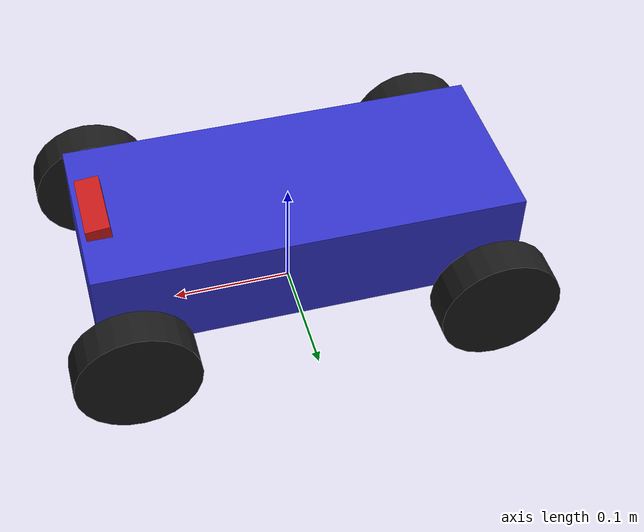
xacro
<?xml version="1.0" encoding="utf-8"?>
<robot name="ackerman_simple">

  <!-- ================= MATERIALS ================= -->
  <material name="blue"><color rgba="0.2 0.2 0.8 1"/></material>
  <material name="black"><color rgba="0.1 0.1 0.1 1"/></material>
  <material name="red"><color rgba="0.8 0.1 0.1 1"/></material>

  <!-- ================= BASE ================= -->
  <link name="base_footprint"/>

  <link name="base_link">
    <inertial>
      <origin xyz="0.0115 0 0.0687" rpy="0 0 0"/>
      <mass value="1.8886"/>
      <inertia ixx="0.00576" ixy="0.0" ixz="0.000003" iyy="0.01878" iyz="0.0" izz="0.02437"/>
    </inertial>
    <visual>
      <origin xyz="0.01 0 0.05" rpy="0 0 0"/>
      <geometry><box size="0.35 0.15 0.08"/></geometry>
      <material name="blue"/>
    </visual>
    <collision>
      <origin xyz="0.01 0 0.05" rpy="0 0 0"/>
      <geometry><box size="0.35 0.15 0.08"/></geometry>
    </collision>
  </link>

  <joint name="base_joint" type="fixed">
    <origin xyz="-0.0117 0 0.02677" rpy="0 0 0"/>
    <parent link="base_footprint"/>
    <child link="base_link"/>
  </joint>

  <!-- ================= FRONT LEFT STEERING & WHEEL ================= -->
  <link name="FL_STEERING_LINK">
    <inertial>
      <origin xyz="-0.0029 0 0" rpy="0 0 0"/>
      <mass value="0.0038"/>
      <inertia ixx="0.0000003" ixy="0" ixz="0" iyy="0.0000006" iyz="0" izz="0.0000003"/>
    </inertial>
  </link>

  <joint name="FL_STEERING_JOINT" type="revolute">
    <origin xyz="0.16174 0.085 0.0235" rpy="0 0 0"/>
    <parent link="base_link"/>
    <child link="FL_STEERING_LINK"/>
    <axis xyz="0 0 1"/>
    <limit lower="-0.524" upper="0.524" effort="5" velocity="3"/>
  </joint>

  <link name="FL_WHEEL_LINK">
    <inertial>
      <origin xyz="0 0 0" rpy="0 0 0"/>
      <mass value="0.0635"/>
      <inertia ixx="0.000046" ixy="0" ixz="0" iyy="0.000089" iyz="0" izz="0.000046"/>
    </inertial>
    <visual>
      <origin xyz="0 0 0" rpy="1.57079632679 0 0"/>
      <geometry><cylinder radius="0.05027" length="0.03"/></geometry>
      <material name="black"/>
    </visual>
    <collision>
      <origin xyz="0 0 0" rpy="1.57079632679 0 0"/>
      <geometry><cylinder radius="0.05027" length="0.03"/></geometry>
    </collision>
  </link>

  <joint name="FL_WHEEL_JOINT" type="continuous">
    <origin xyz="0 0.0245 0" rpy="0 0 0"/>
    <parent link="FL_STEERING_LINK"/>
    <child link="FL_WHEEL_LINK"/>
    <axis xyz="0 1 0"/>
  </joint>

  <!-- ================= FRONT RIGHT STEERING & WHEEL ================= -->
  <link name="FR_STEERING_LINK">
    <inertial>
      <origin xyz="0.0015 0 0" rpy="0 0 0"/>
      <mass value="0.0047"/>
      <inertia ixx="0.0000003" ixy="0" ixz="0" iyy="0.000001" iyz="0" izz="0.0000007"/>
    </inertial>
  </link>

  <joint name="FR_STEERING_JOINT" type="revolute">
    <origin xyz="0.16174 -0.085 0.0235" rpy="0 0 0"/>
    <parent link="base_link"/>
    <child link="FR_STEERING_LINK"/>
    <axis xyz="0 0 1"/>
    <limit lower="-0.524" upper="0.524" effort="5" velocity="3"/>
    <mimic joint="FL_STEERING_JOINT" multiplier="1.0" offset="0.0"/>
  </joint>

  <link name="FR_WHEEL_LINK">
    <inertial>
      <origin xyz="0 0 0" rpy="0 0 0"/>
      <mass value="0.0635"/>
      <inertia ixx="0.000046" ixy="0" ixz="0" iyy="0.000089" iyz="0" izz="0.000046"/>
    </inertial>
    <visual>
      <origin xyz="0 0 0" rpy="1.57079632679 0 0"/>
      <geometry><cylinder radius="0.05027" length="0.03"/></geometry>
      <material name="black"/>
    </visual>
    <collision>
      <origin xyz="0 0 0" rpy="1.57079632679 0 0"/>
      <geometry><cylinder radius="0.05027" length="0.03"/></geometry>
    </collision>
  </link>

  <joint name="FR_WHEEL_JOINT" type="continuous">
    <origin xyz="0 -0.0245 0" rpy="0 0 0"/>
    <parent link="FR_STEERING_LINK"/>
    <child link="FR_WHEEL_LINK"/>
    <axis xyz="0 1 0"/>
  </joint>

  <!-- ================= REAR LEFT WHEEL ================= -->
  <link name="BL_WHEEL_LINK">
    <inertial>
      <origin xyz="0 0 0" rpy="0 0 0"/>
      <mass value="0.0616"/>
      <inertia ixx="0.000046" ixy="0" ixz="0" iyy="0.000089" iyz="0" izz="0.000046"/>
    </inertial>
    <visual>
      <origin xyz="0 0 0" rpy="1.57079632679 0 0"/>
      <geometry><cylinder radius="0.05027" length="0.03"/></geometry>
      <material name="black"/>
    </visual>
    <collision>
      <origin xyz="0 0 0" rpy="1.57079632679 0 0"/>
      <geometry><cylinder radius="0.05027" length="0.03"/></geometry>
    </collision>
  </link>

  <joint name="BL_WHEEL_JOINT" type="continuous">
    <origin xyz="-0.13328 0.1093 0.02075" rpy="0 0 0"/>
    <parent link="base_link"/>
    <child link="BL_WHEEL_LINK"/>
    <axis xyz="0 1 0"/>
  </joint>

  <!-- ================= REAR RIGHT WHEEL ================= -->
  <link name="BR_WHEEL_LINK">
    <inertial>
      <origin xyz="0 0 0" rpy="0 0 0"/>
      <mass value="0.0616"/>
      <inertia ixx="0.000046" ixy="0" ixz="0" iyy="0.000089" iyz="0" izz="0.000046"/>
    </inertial>
    <visual>
      <origin xyz="0 0 0" rpy="1.57079632679 0 0"/>
      <geometry><cylinder radius="0.05027" length="0.03"/></geometry>
      <material name="black"/>
    </visual>
    <collision>
      <origin xyz="0 0 0" rpy="1.57079632679 0 0"/>
      <geometry><cylinder radius="0.05027" length="0.03"/></geometry>
    </collision>
  </link>

  <joint name="BR_WHEEL_JOINT" type="continuous">
    <origin xyz="-0.13328 -0.1093 0.02075" rpy="0 0 0"/>
    <parent link="base_link"/>
    <child link="BR_WHEEL_LINK"/>
    <axis xyz="0 1 0"/>
  </joint>

  <!-- ================= CAMERA ================= -->
  <link name="CAMERA_LINK">
    <inertial>
      <origin xyz="0 0 0" rpy="0 0 0"/>
      <mass value="0.0548"/>
      <inertia ixx="0.000069" ixy="0" ixz="0" iyy="0.000004" iyz="0" izz="0.000066"/>
    </inertial>
    <visual>
      <origin xyz="0 0 0" rpy="0 0 0"/>
      <geometry><box size="0.02 0.06 0.02"/></geometry>
      <material name="red"/>
    </visual>
    <collision>
      <origin xyz="0 0 0" rpy="0 0 0"/>
      <geometry><box size="0.02 0.06 0.02"/></geometry>
    </collision>
  </link>

  <joint name="CAMERA_JOINT" type="fixed">
    <origin xyz="0.17 0.0 0.09" rpy="0 0.1 0"/>
    <parent link="base_link"/>
    <child link="CAMERA_LINK"/>
  </joint>

  <!-- ================= GAZEBO PLUGINS ================= -->

  <!-- Ackermann Steering Plugin: joint names match URDF exactly -->
  <gazebo>
    <plugin filename="libignition-gazebo-ackermann-steering-system.so"
            name="ignition::gazebo::systems::AckermannSteering">
      <left_joint>BL_WHEEL_JOINT</left_joint>
      <right_joint>BR_WHEEL_JOINT</right_joint>
      <left_steering_joint>FL_STEERING_JOINT</left_steering_joint>
      <right_steering_joint>FR_STEERING_JOINT</right_steering_joint>
      <kingpin_width>0.17</kingpin_width>
      <steering_limit>0.524</steering_limit>
      <wheel_base>0.295</wheel_base>
      <wheel_separation>0.2186</wheel_separation>
      <wheel_radius>0.05027</wheel_radius>
      <topic>/cmd_vel</topic>
      <odom_topic>/odom</odom_topic>
      <tf_topic>/tf</tf_topic>
      <frame_id>odom</frame_id>
      <child_frame_id>base_footprint</child_frame_id>
      <odom_publish_frequency>50</odom_publish_frequency>
    </plugin>
  </gazebo>

  <!-- Camera sensor: topic tag inside sensor — no separate plugin needed for Ignition Fortress -->
  <gazebo reference="CAMERA_LINK">
    <sensor name="camera" type="camera">
      <always_on>true</always_on>
      <update_rate>30</update_rate>
      <visualize>true</visualize>
      <topic>/camera/image</topic>
      <camera>
        <horizontal_fov>1.3962634</horizontal_fov>
        <image>
          <width>640</width>
          <height>480</height>
          <format>R8G8B8</format>
        </image>
        <clip>
          <near>0.02</near>
          <far>100</far>
        </clip>
      </camera>
    </sensor>
  </gazebo>

  <!-- Wheel friction: critical for realistic motion -->
  <gazebo reference="FL_WHEEL_LINK"><mu1>0.8</mu1><mu2>0.8</mu2></gazebo>
  <gazebo reference="FR_WHEEL_LINK"><mu1>0.8</mu1><mu2>0.8</mu2></gazebo>
  <gazebo reference="BL_WHEEL_LINK"><mu1>0.8</mu1><mu2>0.8</mu2></gazebo>
  <gazebo reference="BR_WHEEL_LINK"><mu1>0.8</mu1><mu2>0.8</mu2></gazebo>

</robot>
